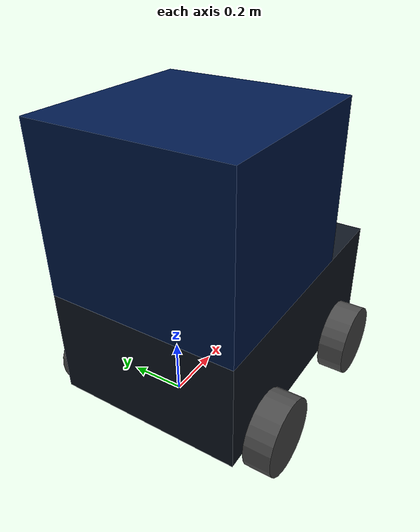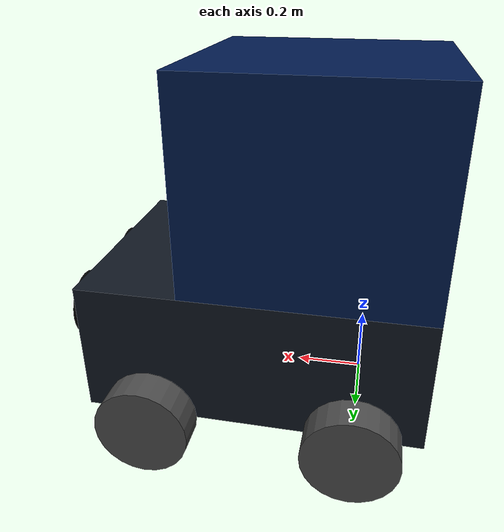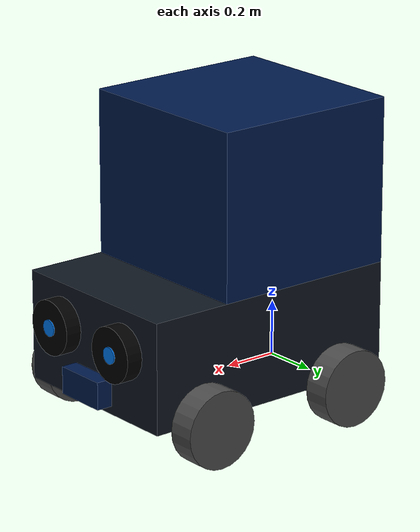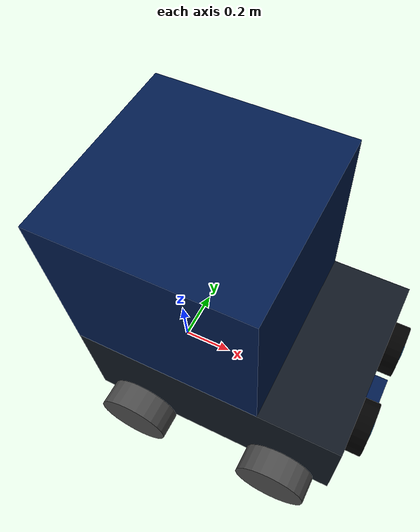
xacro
<?xml version="1.0"?>
<robot xmlns:xacro="http://www.ros.org/wiki/xacro" name="delivery_bot">
    <xacro:include filename="colors.xacro"/>
    <xacro:include filename="inertial_macros.xacro"/>
    <xacro:include filename="robot_core.xacro"/>
    <xacro:include filename="wheels.xacro"/>
    <xacro:include filename="face.xacro"/>
    <xacro:include filename="gazebo_control.xacro"/>
    <xacro:include filename="lidar.xacro"/>
    <xacro:include filename="camera.xacro"/>
</robot>

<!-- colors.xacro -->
<robot xmlns:xacro="http://www.ros.org/wiki/xacro">
    <material name="white">
        <color rgba="1.0 1.0 1.0 1.0"/>
    </material>
    <material name="black">
        <color rgba="0.0 0.0 0.0 1.0"/>
    </material>
    <material name="red">
        <color rgba="1.0 0.0 0.0 1.0"/>
    </material>
    <material name="green">
        <color rgba="0.0 1.0 0.0 1.0"/>
    </material>
    <material name="blue">
        <color rgba="0.0 0.0 1.0 1.0"/>
    </material>

    <material name="yellow">
        <color rgba="1.0 1.0 0.0 1.0"/>
    </material>

    <material name="cyan">
        <color rgba="0.0 1.0 1.0 1.0"/>
    </material>

    <material name="magenta">
        <color rgba="1.0 0.0 1.0 1.0"/>
    </material>

    <material name="gray">
        <color rgba="0.5 0.5 0.5 1.0"/>
    </material>

    <material name="silver">
        <color rgba="0.69 0.69 0.69 1.0"/>
    </material>

    <material name="orange">
        <color rgba="1.0 0.5 0.0 1.0"/>
    </material>

    <material name="purple">
        <color rgba="0.5 0.0 0.5 1.0"/>
    </material>

    <material name="pink">
        <color rgba="1.0 0.75 0.8 1.0"/>
    </material>

    <material name="brown">
        <color rgba="0.6 0.3 0.0 1.0"/>
    </material>

    <material name="carbon_black">
    <color rgba="0.06 0.09 0.13 1.0"/>
    </material>
    <material name="neon_cyan">
        <color rgba="0.0 1.0 1.0 1.0"/>
    </material>
    <material name="dark_gray">
        <color rgba="0.3 0.3 0.3 1.0"/>
    </material>
    <material name="glowing_blue">
        <color rgba="0.0 0.5 1.0 1.0"/>
    </material>
    <material name="deep_sci_fi_blue">
    <color rgba="0.0 0.1 0.3 1.0"/>
</material>

</robot>

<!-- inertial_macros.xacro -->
<robot xmlns:xacro="http://www.ros.org/wiki/xacro" >

    <xacro:macro name="inertial_box" params="mass x y z *origin">
        <inertial>
            <xacro:insert_block name="origin"/>
            <mass value="${mass}" />
            <inertia ixx="${(1/12) * mass * (y*y+z*z)}" ixy="0.0" ixz="0.0"
                    iyy="${(1/12) * mass * (x*x+z*z)}" iyz="0.0"
                    izz="${(1/12) * mass * (x*x+y*y)}" />
        </inertial>
    </xacro:macro>

    <xacro:macro name="inertial_cylinder" params="mass length radius *origin">
        <inertial>
            <xacro:insert_block name="origin"/>
            <mass value="${mass}" />
            <inertia ixx="${(1/12) * mass * (3*radius*radius + length*length)}" ixy="0.0" ixz="0.0"
                    iyy="${(1/12) * mass * (3*radius*radius + length*length)}" iyz="0.0"
                    izz="${(1/2) * mass * (radius*radius)}" />
        </inertial>
    </xacro:macro>

</robot>

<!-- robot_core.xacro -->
<robot xmlns:xacro="http://www.ros.org/wiki/xacro">

    <!-- BASE LINK -->
    <link name="base_link"></link>

   <!-- BASE FOOTPRINT -->
    <joint name="base_footprint_joint" type="fixed">
        <parent link="base_link"/>
        <child link="base_footprint"/>
        <origin xyz="0.0 0.0 0.0" rpy="0.0 0.0 0.0"/>
    </joint>

    <link name="base_footprint"></link>

    <!-- CHASSIS LINK -->
    <joint name="chassis_joint" type="fixed">
        <parent link="base_link"/>
        <child link="chassis"/>
        <origin xyz="-0.2 0.0 0.0" rpy="0.0 0.0 0.0"/>
    </joint>

    <link name="chassis">
        <visual>
            <origin xyz="0.5 0.0 0.2" rpy="0.0 0.0 0.0"/>
            <geometry>
                <box size="1.0 0.7 0.4"/>
            </geometry>
            <material name="carbon_black"/>
        </visual>
        <collision>
            <origin xyz="0.5 0.0 0.2" rpy="0.0 0.0 0.0"/>
            <geometry>
                <box size="1.0 0.7 0.4"/>
            </geometry>
        </collision>
        <xacro:inertial_box mass="2" x="1" y="0.7" z="0.4">
            <origin xyz="0.5 0.0 0.2" rpy="0.0 0.0 0.0"/>
        </xacro:inertial_box>
    </link>

    <!-- ITEM BASKET LINK -->

    <joint name="basket_joint" type="fixed">
        <parent link="chassis"/>
        <child link="basket"/>
        <origin xyz="0.0 0.0 0.4"/>
    </joint>

    <link name="basket">
        <visual>
            <origin xyz="0.35 0.0 0.3"/>
            <geometry>
                <box size="0.7 0.7 0.6"/>
            </geometry>
            <material name="deep_sci_fi_blue"/>
        </visual>
        <collision>
            <origin xyz="0.35 0.0 0.3"/>
            <geometry>
                <box size="0.7 0.7 0.6"/>
            </geometry>
        </collision>
        <xacro:inertial_box mass="3" x="0.7" y="0.7" z="0.6">
            <origin xyz="0.35 0.0 0.3"/>
        </xacro:inertial_box>
    </link>

</robot>

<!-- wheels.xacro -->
<robot xmlns:xacro="http://www.ros.org/wiki/xacro">

    <!-- LEFT WHEEL LINK -->

    <joint name="left_wheel_joint" type="continuous">
        <parent link="base_link"/>
        <child link="left_wheel"/>
        <origin xyz="0.0 0.4 0.0" rpy="-${pi/2} 0.0 0.0"/>
        <axis xyz="0.0 0.0 1.0"/>
    </joint>

    <link name="left_wheel">
        <visual>
            <geometry>
                <cylinder radius="0.14" length="0.1"/>
            </geometry>
            <material name="dark_gray"/>
        </visual>
        <collision>
            <geometry>
                <cylinder radius="0.14" length="0.1"/>
            </geometry>
        </collision>
        <xacro:inertial_cylinder mass="0.3" radius="0.14" length="0.1">
            <origin xyz="0.0 0.0 0.0" rpy="0.0 0.0 0.0"/>
        </xacro:inertial_cylinder>
    </link>

    <!-- RIGHT WHEEL LINK -->

    <joint name="right_wheel_joint" type="continuous">
        <parent link="base_link"/>
        <child link="right_wheel"/>
        <origin xyz="0.0 -0.4 0.0" rpy="${pi/2} 0.0 0.0"/>
        <axis xyz="0.0 0.0 -1.0"/>
    </joint>

    <link name="right_wheel">
        <visual>
            <geometry>
                <cylinder radius="0.14" length="0.1"/>
            </geometry>
            <material name="dark_gray"/>
        </visual>
        <collision>
            <geometry>
                <cylinder radius="0.14" length="0.1"/>
            </geometry>
        </collision>
        <xacro:inertial_cylinder mass="0.3" radius="0.14" length="0.1">
            <origin xyz="0.0 0.0 0.0" rpy="0.0 0.0 0.0"/>
        </xacro:inertial_cylinder>
    </link>

    <!-- LEFT CASTER WHEEL LINK -->

    <joint name="left_caster_wheel_joint" type="fixed">
        <parent link="base_link"/>
        <child link="left_caster_wheel"/>
        <origin xyz="0.6 0.4 0.0" rpy="-${pi/2} 0.0 0.0"/>
    </joint>

    <link name="left_caster_wheel">
        <visual>
            <geometry>
                <cylinder radius="0.14" length="0.1"/>
            </geometry>
            <material name="dark_gray"/>
        </visual>
        <collision>
            <geometry>
                <cylinder radius="0.14" length="0.1"/>
            </geometry>
        </collision>
        <xacro:inertial_cylinder mass="0.3" radius="0.14" length="0.1">
            <origin xyz="0.0 0.0 0.0" rpy="0.0 0.0 0.0"/>
        </xacro:inertial_cylinder>
    </link>

    <!-- RIGHT CASTER WHEEL LINK -->

    <joint name="right_caster_wheel_joint" type="fixed">
        <parent link="base_link"/>
        <child link="right_caster_wheel"/>
        <origin xyz="0.6 -0.4 0.0" rpy="${pi/2} 0.0 0.0"/>
    </joint>

    <link name="right_caster_wheel">
        <visual>
            <geometry>
                <cylinder radius="0.14" length="0.1"/>
            </geometry>
            <material name="dark_gray"/>
        </visual>
        <collision>
            <geometry>
                <cylinder radius="0.14" length="0.1"/>
            </geometry>
        </collision>
        <xacro:inertial_cylinder mass="0.3" radius="0.14" length="0.1">
            <origin xyz="0.0 0.0 0.0" rpy="0.0 0.0 0.0"/>
        </xacro:inertial_cylinder>
    </link>

    <gazebo reference="left_caster_wheel">
        <mu1 value="0.0001"/>
        <mu2 value="0.0001"/>
    </gazebo>

    <gazebo reference="right_caster_wheel">
        <mu1 value="0.0001"/>
        <mu2 value="0.0001"/>
    </gazebo>
</robot>

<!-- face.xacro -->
<robot xmlns:xacro="http://www.ros.org/wiki/xacro">
    <!-- LEFT EYE LINK -->
    <joint name="left_eye_joint" type="fixed">
        <parent link="chassis"/>
        <child link="left_eye"/>
        <origin xyz="1.03 0.17 0.25"  rpy="0.0 -${pi/2} 0.0"/>
    </joint>

    <link name="left_eye">
        <visual>
            <geometry>
                <cylinder radius="0.1" length="0.06"/>
            </geometry>
            <material name="black"/>
        </visual>
        <collision>
            <geometry>
                <cylinder radius="0.1" length="0.06"/>
            </geometry>
        </collision>
        <xacro:inertial_cylinder mass="0.05" radius="0.1" length="0.06">
            <origin xyz="0.0 0.0 0.0" rpy="0.0 0.0 0.0"/>
        </xacro:inertial_cylinder>
    </link>

    <!-- RIGHT EYE LINK -->
    <joint name="right_eye_joint" type="fixed">
        <parent link="chassis"/>
        <child link="right_eye"/>
        <origin xyz="1.03 -0.17 0.25"  rpy="0.0 -${pi/2} 0.0"/>
    </joint>

    <link name="right_eye">
        <visual>
            <geometry>
                <cylinder radius="0.1" length="0.06"/>
            </geometry>
            <material name="black"/>
        </visual>
        <collision>
            <geometry>
                <cylinder radius="0.1" length="0.06"/>
            </geometry>
        </collision>
        <xacro:inertial_cylinder mass="0.05" radius="0.1" length="0.06">
            <origin xyz="0.0 0.0 0.0" rpy="0.0 0.0 0.0"/>
        </xacro:inertial_cylinder>
    </link>

    <!-- INNER LEFT EYE LINK -->
    <joint name="left_inner_eye_joint" type="fixed">
        <parent link="left_eye"/>
        <child link="left_inner_eye"/>
        <origin xyz="0.0 0.0 -0.03"/>
    </joint>

    <link name="left_inner_eye">
        <visual>
            <geometry>
                <cylinder radius="0.03" length="0.01"/>
            </geometry>
            <material name="glowing_blue"/>
        </visual>
        <collision>
            <geometry>
                <cylinder radius="0.03" length="0.01"/>
            </geometry>
        </collision>
        <xacro:inertial_cylinder mass="0.01" radius="0.03" length="0.01">
            <origin xyz="0.0 0.0 0.0" rpy="0.0 0.0 0.0"/>
        </xacro:inertial_cylinder>
    </link>

    <!-- INNER RIGHT EYE LINK -->
    <joint name="right_inner_eye_joint" type="fixed">
        <parent link="right_eye"/>
        <child link="right_inner_eye"/>
        <origin xyz="0.0 0.0 -0.03"/>
    </joint>

    <link name="right_inner_eye">
        <visual>
            <geometry>
                <cylinder radius="0.03" length="0.01"/>
            </geometry>
            <material name="glowing_blue"/>
        </visual>
        <collision>
            <geometry>
                <cylinder radius="0.03" length="0.01"/>
            </geometry>
        </collision>
        <xacro:inertial_cylinder mass="0.01" radius="0.03" length="0.01">
            <origin xyz="0.0 0.0 0.0" rpy="0.0 0.0 0.0"/>
        </xacro:inertial_cylinder>
    </link>
</robot>

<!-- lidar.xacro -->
<robot xmlns:xacro="http://www.ros.org/wiki/xacro">

    <joint name="laser_joint" type="fixed">
        <parent link="chassis"/>
        <child link="laser_frame"/>
        <origin xyz="0.5 0.0 -0.05"/>
    </joint>

    <link name="laser_frame">
        <visual>
            <geometry>
                <cylinder radius="0.1" length="0.07"/>
            </geometry>
            <material name="red"/>
        </visual>
        <collision>
            <geometry>
                <cylinder radius="0.1" length="0.07"/>
            </geometry>
        </collision>
        <xacro:inertial_cylinder mass="0.2" radius="0.1" length="0.07">
            <origin xyz="0.0 0.0 0.0" rpy="0.0 0.0 0.0"/>
        </xacro:inertial_cylinder>
    </link>

    <gazebo reference="laser_frame">
        <sensor name="lidar" type="gpu_lidar">
            <pose>0 0 0 0 0 0</pose>
            <visualize>true</visualize>
            <update_rate>10</update_rate>

            <lidar>
                <scan>
                    <horizontal>
                        <samples>360</samples>
                        <min_angle>-3.14</min_angle>
                        <max_angle>3.14</max_angle>
                    </horizontal>
                </scan>
                <range>
                    <min>0.7</min>
                    <max>15</max>
                </range>
            </lidar>

            <topic>scan</topic>

            <gz_frame_id>laser_frame</gz_frame_id>
        </sensor>
    </gazebo>
</robot>

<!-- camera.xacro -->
<robot xmlns:xacro="http://www.ros.org/wiki/xacro">
     <joint name="camera_joint" type="fixed">
        <parent link="chassis"/>
        <child link="camera"/>
        <origin xyz="1.03 0 0.08"  rpy="0.0 0.0 0.0"/>
    </joint>

    <link name="camera">
        <visual>
            <geometry>
                <box size="0.06 0.2 0.1"/>
            </geometry>
            <material name="deep_sci_fi_blue"/>
        </visual>
        <collision>
            <geometry>
                <box size="0.06 0.2 0.1"/>
            </geometry>
        </collision>
        <xacro:inertial_box mass="0.2" x="0.06" y="0.2" z="0.1">
            <origin xyz="0.0 0.0 0.0" rpy="0.0 0.0 0.0"/>
        </xacro:inertial_box>
    </link>

    <joint name="camera_optical_joint" type="fixed">
        <parent link="camera"/>
        <child link="camera_link_optical"/>
        <origin xyz="0.0 0.0 0.0" rpy="-${pi/2} 0 -${pi/2}"/>

    </joint>

    <link name="camera_link_optical"></link>

    <gazebo reference="camera">
        <sensor name="camera" type="camera">
            <pose>0 0 0 0 0 0</pose>
            <visualize>true</visualize>
            <update_rate>10</update_rate>
            <camera>
                <camera_info_topic>camera/camera_info</camera_info_topic>
                <horizontal_fov>1.089</horizontal_fov>
                <image>
                    <format>R8G8B8</format>
                    <width>720</width>
                    <height>480</height>
                </image>
                <clip>
                    <near>0.1</near>
                    <far>10</far>
                </clip>
            </camera>
            <topic>camera/image_raw</topic>
            <gz_frame_id>camera_link_optical</gz_frame_id>
        </sensor>

    </gazebo>
</robot>
